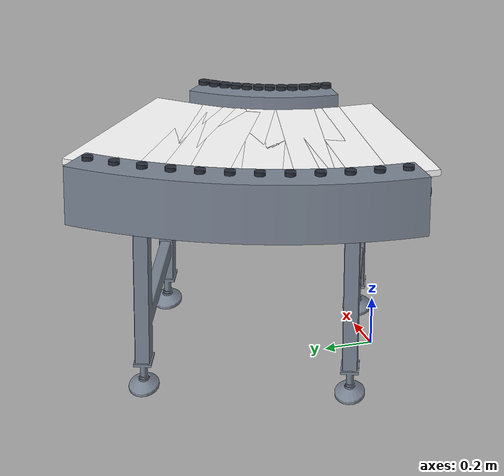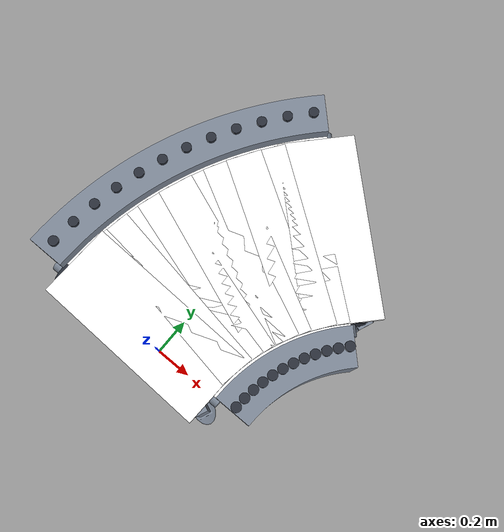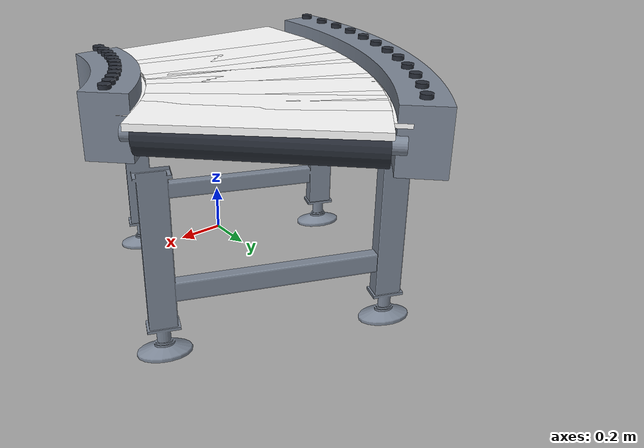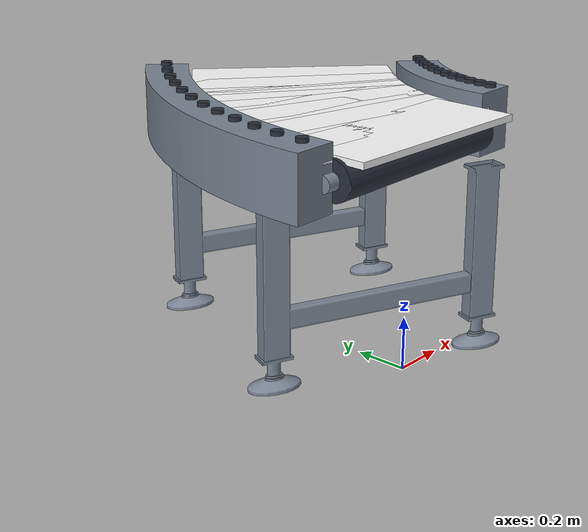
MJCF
<mujoco model="conveyor_curve_right_45">
  <!-- Generated by generate.mjs. Edit the generator rather than this file. -->
  <compiler angle="radian" meshdir="meshes" texturedir="textures"/>
  <option timestep="0.002"/>

  <asset>
    <material name="conveyor_frame_mat" rgba="0.48 0.52 0.58 1" metallic="0.72" roughness="0.28"/>
    <material name="conveyor_hardware_mat" rgba="0.16 0.18 0.22 1" metallic="0.82" roughness="0.24"/>
    <texture name="belt_color" type="2d" file="rubber-color.png"/>
    <texture name="belt_normal" type="2d" file="rubber-normal.png"/>
    <texture name="belt_roughness" type="2d" file="rubber-roughness.png"/>
    <material name="conveyor_belt_mat" rgba="1 1 1 1" metallic="0" roughness="1">
      <layer role="rgb" texture="belt_color"/>
      <layer role="normal" texture="belt_normal"/>
      <layer role="roughness" texture="belt_roughness"/>
    </material>
    <mesh name="conveyor_curve_inner_rail_visual" file="curve-right-45-inner-rail.obj" inertia="shell"/>
    <mesh name="conveyor_curve_outer_rail_visual" file="curve-right-45-outer-rail.obj" inertia="shell"/>
    <mesh name="conveyor_curve_belt_underlay_visual" file="curve-right-45-belt-underlay.obj" inertia="shell"/>
    <mesh name="conveyor_curve_belt_tile" file="belt-curve-tile.obj" inertia="shell"/>
    <mesh name="conveyor_curve_belt_end_tile" file="belt-curve-end-tile.obj" inertia="shell"/>
    <mesh name="conveyor_curve_support_visual"
          file="curve-support-short.obj" inertia="shell"/>
  </asset>

  <worldbody>
    <body name="conveyor_curve_right_45" pos="0 0 0">
      <!-- The incoming connection is centered at the origin and points along local +Y. -->
      <geom name="conveyor_curve_belt_underlay_visual" type="mesh" mesh="conveyor_curve_belt_underlay_visual"
            material="conveyor_belt_mat" group="1" contype="0" conaffinity="0" mass="0"/>
      <geom name="conveyor_curve_inner_rail_visual" type="mesh" mesh="conveyor_curve_inner_rail_visual"
            material="conveyor_frame_mat" group="1" contype="0" conaffinity="0" mass="0"/>
      <geom name="conveyor_curve_outer_rail_visual" type="mesh" mesh="conveyor_curve_outer_rail_visual"
            material="conveyor_frame_mat" group="1" contype="0" conaffinity="0" mass="0"/>
      <!-- Connection frames use local +Y as belt travel for drag-to-attach placement. -->
      <site name="attachment_site" pos="0 0 0.88" xyaxes="1 0 0 0 1 0" size="0.035" group="4"/>
      <site name="attachment_site_outlet" pos="0.366116524 0.883883476 0.88"
            xyaxes="0.707106781 -0.707106781 0 0.707106781 0.707106781 0" size="0.035" group="4"/>

      <!-- Driven roller and end caps make each curve interface read as a real conveyor transition. -->
      <geom name="conveyor_curve_inlet_roller" type="cylinder" fromto="-0.405 0 0.81 0.405 0 0.81" size="0.075"
            material="conveyor_hardware_mat" group="1" contype="0" conaffinity="0" mass="0"/>
      <geom name="conveyor_curve_inlet_roller_caps" type="cylinder" fromto="-0.455 0 0.81 0.455 0 0.81" size="0.031"
            material="conveyor_frame_mat" group="1" contype="0" conaffinity="0" mass="0"/>
      <!-- Driven roller and end caps make each curve interface read as a real conveyor transition. -->
      <geom name="conveyor_curve_outlet_roller" type="cylinder" fromto="0.092463654 1.157536346 0.81 0.665220146 0.584779854 0.81" size="0.075"
            material="conveyor_hardware_mat" group="1" contype="0" conaffinity="0" mass="0"/>
      <geom name="conveyor_curve_outlet_roller_caps" type="cylinder" fromto="0.057108315 1.192891685 0.81 0.700575485 0.549424515 0.81" size="0.031"
            material="conveyor_frame_mat" group="1" contype="0" conaffinity="0" mass="0"/>

      <!-- Reuse the straight conveyor's finished, adjustable-leg support assembly. -->
      <geom name="conveyor_curve_support_visual" type="mesh" mesh="conveyor_curve_support_visual"
            pos="0.11177709 0.471467366 0" quat="0.98078528 0 0 -0.195090322" material="conveyor_frame_mat"
            group="1" contype="0" conaffinity="0" mass="0"/>

      <!-- Fasteners along both guard rails give the curve the same manufactured detail as the straight modules. -->
      <geom name="conveyor_curve_inner_fastener_0" type="cylinder" pos="0.523385647 0.023786891 0.955" size="0.022 0.008"
            material="conveyor_hardware_mat" group="1" contype="0" conaffinity="0" mass="0"/>
      <geom name="conveyor_curve_outer_fastener_0" type="cylinder" pos="-0.486073587 0.056833165 0.955" size="0.022 0.008"
            material="conveyor_hardware_mat" group="1" contype="0" conaffinity="0" mass="0"/>
      <geom name="conveyor_curve_inner_fastener_1" type="cylinder" pos="0.526497121 0.071258814 0.955" size="0.022 0.008"
            material="conveyor_hardware_mat" group="1" contype="0" conaffinity="0" mass="0"/>
      <geom name="conveyor_curve_outer_fastener_1" type="cylinder" pos="-0.478639453 0.170256126 0.955" size="0.022 0.008"
            material="conveyor_hardware_mat" group="1" contype="0" conaffinity="0" mass="0"/>
      <geom name="conveyor_curve_inner_fastener_2" type="cylinder" pos="0.532706746 0.118425596 0.955" size="0.022 0.008"
            material="conveyor_hardware_mat" group="1" contype="0" conaffinity="0" mass="0"/>
      <geom name="conveyor_curve_outer_fastener_2" type="cylinder" pos="-0.46380302 0.282950024 0.955" size="0.022 0.008"
            material="conveyor_hardware_mat" group="1" contype="0" conaffinity="0" mass="0"/>
      <geom name="conveyor_curve_inner_fastener_3" type="cylinder" pos="0.54198793 0.165085261 0.955" size="0.022 0.008"
            material="conveyor_hardware_mat" group="1" contype="0" conaffinity="0" mass="0"/>
      <geom name="conveyor_curve_outer_fastener_3" type="cylinder" pos="-0.441627819 0.394432286 0.955" size="0.022 0.008"
            material="conveyor_hardware_mat" group="1" contype="0" conaffinity="0" mass="0"/>
      <geom name="conveyor_curve_inner_fastener_4" type="cylinder" pos="0.554300931 0.211038005 0.955" size="0.022 0.008"
            material="conveyor_hardware_mat" group="1" contype="0" conaffinity="0" mass="0"/>
      <geom name="conveyor_curve_outer_fastener_4" type="cylinder" pos="-0.412208808 0.504225529 0.955" size="0.022 0.008"
            material="conveyor_hardware_mat" group="1" contype="0" conaffinity="0" mass="0"/>
      <geom name="conveyor_curve_inner_fastener_5" type="cylinder" pos="0.569593022 0.256087053 0.955" size="0.022 0.008"
            material="conveyor_hardware_mat" group="1" contype="0" conaffinity="0" mass="0"/>
      <geom name="conveyor_curve_outer_fastener_5" type="cylinder" pos="-0.375671964 0.611859601 0.955" size="0.022 0.008"
            material="conveyor_hardware_mat" group="1" contype="0" conaffinity="0" mass="0"/>
      <geom name="conveyor_curve_inner_fastener_6" type="cylinder" pos="0.58779872 0.300039496 0.955" size="0.022 0.008"
            material="conveyor_hardware_mat" group="1" contype="0" conaffinity="0" mass="0"/>
      <geom name="conveyor_curve_outer_fastener_6" type="cylinder" pos="-0.332173743 0.716873597 0.955" size="0.022 0.008"
            material="conveyor_hardware_mat" group="1" contype="0" conaffinity="0" mass="0"/>
      <geom name="conveyor_curve_inner_fastener_7" type="cylinder" pos="0.608840066 0.342707125 0.955" size="0.022 0.008"
            material="conveyor_hardware_mat" group="1" contype="0" conaffinity="0" mass="0"/>
      <geom name="conveyor_curve_outer_fastener_7" type="cylinder" pos="-0.281900411 0.818817829 0.955" size="0.022 0.008"
            material="conveyor_hardware_mat" group="1" contype="0" conaffinity="0" mass="0"/>
      <geom name="conveyor_curve_inner_fastener_8" type="cylinder" pos="0.632626957 0.383907228 0.955" size="0.022 0.008"
            material="conveyor_hardware_mat" group="1" contype="0" conaffinity="0" mass="0"/>
      <geom name="conveyor_curve_outer_fastener_8" type="cylinder" pos="-0.225067246 0.917255758 0.955" size="0.022 0.008"
            material="conveyor_hardware_mat" group="1" contype="0" conaffinity="0" mass="0"/>
      <geom name="conveyor_curve_inner_fastener_9" type="cylinder" pos="0.659057534 0.423463383 0.955" size="0.022 0.008"
            material="conveyor_hardware_mat" group="1" contype="0" conaffinity="0" mass="0"/>
      <geom name="conveyor_curve_outer_fastener_9" type="cylinder" pos="-0.161917617 1.011765856 0.955" size="0.022 0.008"
            material="conveyor_hardware_mat" group="1" contype="0" conaffinity="0" mass="0"/>
      <geom name="conveyor_curve_inner_fastener_10" type="cylinder" pos="0.688018618 0.461206201 0.955" size="0.022 0.008"
            material="conveyor_hardware_mat" group="1" contype="0" conaffinity="0" mass="0"/>
      <geom name="conveyor_curve_outer_fastener_10" type="cylinder" pos="-0.09272194 1.101943418 0.955" size="0.022 0.008"
            material="conveyor_hardware_mat" group="1" contype="0" conaffinity="0" mass="0"/>
      <geom name="conveyor_curve_inner_fastener_11" type="cylinder" pos="0.719386192 0.496974065 0.955" size="0.022 0.008"
            material="conveyor_hardware_mat" group="1" contype="0" conaffinity="0" mass="0"/>
      <geom name="conveyor_curve_outer_fastener_11" type="cylinder" pos="-0.017776522 1.18740229 0.955" size="0.022 0.008"
            material="conveyor_hardware_mat" group="1" contype="0" conaffinity="0" mass="0"/>

      <!-- Overlapping tangent boxes approximate stable curved frame and rail collision. -->
      <geom name="conveyor_curve_frame_collision_0" type="box"
            pos="0.01865603 0.040310028 0.35" quat="0.999866138 0 0 -0.016361732"
            size="0.52 0.085235363 0.35" group="3" rgba="0 0 0 0" contype="1" conaffinity="0" density="31.5085"/>
      <geom name="conveyor_curve_inner_rail_collision_0" type="box"
            pos="0.52838297 0.023623296 0.82" quat="0.999866138 0 0 -0.016361732"
            size="0.09 0.085235363 0.12" group="3" rgba="0 0 0 0" contype="1" conaffinity="0" density="31.5085"/>
      <geom name="conveyor_curve_outer_rail_collision_0" type="box"
            pos="-0.491070909 0.05699676 0.82" quat="0.999866138 0 0 -0.016361732"
            size="0.09 0.085235363 0.12" group="3" rgba="0 0 0 0" contype="1" conaffinity="0" density="31.5085"/>
      <geom name="conveyor_curve_frame_collision_1" type="box"
            pos="0.023928834 0.12075747 0.35" quat="0.998795456 0 0 -0.049067674"
            size="0.52 0.085235363 0.35" group="3" rgba="0 0 0 0" contype="1" conaffinity="0" density="31.5085"/>
      <geom name="conveyor_curve_inner_rail_collision_1" type="box"
            pos="0.531473045 0.070768728 0.82" quat="0.998795456 0 0 -0.049067674"
            size="0.09 0.085235363 0.12" group="3" rgba="0 0 0 0" contype="1" conaffinity="0" density="31.5085"/>
      <geom name="conveyor_curve_outer_rail_collision_1" type="box"
            pos="-0.483615377 0.170746211 0.82" quat="0.998795456 0 0 -0.049067674"
            size="0.09 0.085235363 0.12" group="3" rgba="0 0 0 0" contype="1" conaffinity="0" density="31.5085"/>
      <geom name="conveyor_curve_frame_collision_2" type="box"
            pos="0.034451863 0.20068781 0.35" quat="0.996655239 0 0 -0.081721074"
            size="0.52 0.085235363 0.35" group="3" rgba="0 0 0 0" contype="1" conaffinity="0" density="31.5085"/>
      <geom name="conveyor_curve_inner_rail_collision_2" type="box"
            pos="0.537639962 0.117611118 0.82" quat="0.996655239 0 0 -0.081721074"
            size="0.09 0.085235363 0.12" group="3" rgba="0 0 0 0" contype="1" conaffinity="0" density="31.5085"/>
      <geom name="conveyor_curve_outer_rail_collision_2" type="box"
            pos="-0.468736236 0.283764501 0.82" quat="0.996655239 0 0 -0.081721074"
            size="0.09 0.085235363 0.12" group="3" rgba="0 0 0 0" contype="1" conaffinity="0" density="31.5085"/>
      <geom name="conveyor_curve_frame_collision_3" type="box"
            pos="0.050180056 0.279758774 0.35" quat="0.993447779 0 0 -0.114286965"
            size="0.52 0.085235363 0.35" group="3" rgba="0 0 0 0" contype="1" conaffinity="0" density="31.5085"/>
      <geom name="conveyor_curve_inner_rail_collision_3" type="box"
            pos="0.546857315 0.163949879 0.82" quat="0.993447779 0 0 -0.114286965"
            size="0.09 0.085235363 0.12" group="3" rgba="0 0 0 0" contype="1" conaffinity="0" density="31.5085"/>
      <geom name="conveyor_curve_outer_rail_collision_3" type="box"
            pos="-0.446497204 0.395567668 0.82" quat="0.993447779 0 0 -0.114286965"
            size="0.09 0.085235363 0.12" group="3" rgba="0 0 0 0" contype="1" conaffinity="0" density="31.5085"/>
      <geom name="conveyor_curve_frame_collision_4" type="box"
            pos="0.071046061 0.357631767 0.35" quat="0.98917651 0 0 -0.146730474"
            size="0.52 0.085235363 0.35" group="3" rgba="0 0 0 0" contype="1" conaffinity="0" density="31.5085"/>
      <geom name="conveyor_curve_inner_rail_collision_4" type="box"
            pos="0.559085633 0.209586582 0.82" quat="0.98917651 0 0 -0.146730474"
            size="0.09 0.085235363 0.12" group="3" rgba="0 0 0 0" contype="1" conaffinity="0" density="31.5085"/>
      <geom name="conveyor_curve_outer_rail_collision_4" type="box"
            pos="-0.41699351 0.505676953 0.82" quat="0.98917651 0 0 -0.146730474"
            size="0.09 0.085235363 0.12" group="3" rgba="0 0 0 0" contype="1" conaffinity="0" density="31.5085"/>
      <geom name="conveyor_curve_frame_collision_5" type="box"
            pos="0.096960529 0.433973327 0.35" quat="0.983846006 0 0 -0.179016861"
            size="0.52 0.085235363 0.35" group="3" rgba="0 0 0 0" contype="1" conaffinity="0" density="31.5085"/>
      <geom name="conveyor_curve_inner_rail_collision_5" type="box"
            pos="0.574272552 0.254325803 0.82" quat="0.983846006 0 0 -0.179016861"
            size="0.09 0.085235363 0.12" group="3" rgba="0 0 0 0" contype="1" conaffinity="0" density="31.5085"/>
      <geom name="conveyor_curve_outer_rail_collision_5" type="box"
            pos="-0.380351494 0.613620852 0.82" quat="0.983846006 0 0 -0.179016861"
            size="0.09 0.085235363 0.12" group="3" rgba="0 0 0 0" contype="1" conaffinity="0" density="31.5085"/>
      <geom name="conveyor_curve_frame_collision_6" type="box"
            pos="0.127812489 0.508456546 0.35" quat="0.977461975 0 0 -0.211111552"
            size="0.52 0.085235363 0.35" group="3" rgba="0 0 0 0" contype="1" conaffinity="0" density="31.5085"/>
      <geom name="conveyor_curve_inner_rail_collision_6" type="box"
            pos="0.592353039 0.297975961 0.82" quat="0.977461975 0 0 -0.211111552"
            size="0.09 0.085235363 0.12" group="3" rgba="0 0 0 0" contype="1" conaffinity="0" density="31.5085"/>
      <geom name="conveyor_curve_outer_rail_collision_6" type="box"
            pos="-0.336728062 0.718937132 0.82" quat="0.977461975 0 0 -0.211111552"
            size="0.09 0.085235363 0.12" group="3" rgba="0 0 0 0" contype="1" conaffinity="0" density="31.5085"/>
      <geom name="conveyor_curve_frame_collision_7" type="box"
            pos="0.163469827 0.580762477 0.35" quat="0.970031253 0 0 -0.24298018"
            size="0.52 0.085235363 0.35" group="3" rgba="0 0 0 0" contype="1" conaffinity="0" density="31.5085"/>
      <geom name="conveyor_curve_inner_rail_collision_7" type="box"
            pos="0.613249672 0.340350141 0.82" quat="0.970031253 0 0 -0.24298018"
            size="0.09 0.085235363 0.12" group="3" rgba="0 0 0 0" contype="1" conaffinity="0" density="31.5085"/>
      <geom name="conveyor_curve_outer_rail_collision_7" type="box"
            pos="-0.286310017 0.821174813 0.82" quat="0.970031253 0 0 -0.24298018"
            size="0.09 0.085235363 0.12" group="3" rgba="0 0 0 0" contype="1" conaffinity="0" density="31.5085"/>
      <geom name="conveyor_curve_frame_collision_8" type="box"
            pos="0.203779855 0.650581493 0.35" quat="0.961561798 0 0 -0.274588618"
            size="0.52 0.085235363 0.35" group="3" rgba="0 0 0 0" contype="1" conaffinity="0" density="31.5085"/>
      <geom name="conveyor_curve_inner_rail_collision_8" type="box"
            pos="0.636872968 0.381266889 0.82" quat="0.961561798 0 0 -0.274588618"
            size="0.09 0.085235363 0.12" group="3" rgba="0 0 0 0" contype="1" conaffinity="0" density="31.5085"/>
      <geom name="conveyor_curve_outer_rail_collision_8" type="box"
            pos="-0.229313257 0.919896097 0.82" quat="0.961561798 0 0 -0.274588618"
            size="0.09 0.085235363 0.12" group="3" rgba="0 0 0 0" contype="1" conaffinity="0" density="31.5085"/>
      <geom name="conveyor_curve_frame_collision_9" type="box"
            pos="0.248569958 0.717614619 0.35" quat="0.952062678 0 0 -0.30590302"
            size="0.52 0.085235363 0.35" group="3" rgba="0 0 0 0" contype="1" conaffinity="0" density="31.5085"/>
      <geom name="conveyor_curve_inner_rail_collision_9" type="box"
            pos="0.663121767 0.420550994 0.82" quat="0.952062678 0 0 -0.30590302"
            size="0.09 0.085235363 0.12" group="3" rgba="0 0 0 0" contype="1" conaffinity="0" density="31.5085"/>
      <geom name="conveyor_curve_outer_rail_collision_9" type="box"
            pos="-0.165981851 1.014678245 0.82" quat="0.952062678 0 0 -0.30590302"
            size="0.09 0.085235363 0.12" group="3" rgba="0 0 0 0" contype="1" conaffinity="0" density="31.5085"/>
      <geom name="conveyor_curve_frame_collision_10" type="box"
            pos="0.297648339 0.78157481 0.35" quat="0.941544065 0 0 -0.336889853"
            size="0.52 0.085235363 0.35" group="3" rgba="0 0 0 0" contype="1" conaffinity="0" density="31.5085"/>
      <geom name="conveyor_curve_inner_rail_collision_10" type="box"
            pos="0.69188367 0.458034235 0.82" quat="0.941544065 0 0 -0.336889853"
            size="0.09 0.085235363 0.12" group="3" rgba="0 0 0 0" contype="1" conaffinity="0" density="31.5085"/>
      <geom name="conveyor_curve_outer_rail_collision_10" type="box"
            pos="-0.096586993 1.105115385 0.82" quat="0.941544065 0 0 -0.336889853"
            size="0.09 0.085235363 0.12" group="3" rgba="0 0 0 0" contype="1" conaffinity="0" density="31.5085"/>
      <geom name="conveyor_curve_frame_collision_11" type="box"
            pos="0.350804835 0.842188177 0.35" quat="0.930017224 0 0 -0.367515937"
            size="0.52 0.085235363 0.35" group="3" rgba="0 0 0 0" contype="1" conaffinity="0" density="31.5085"/>
      <geom name="conveyor_curve_inner_rail_collision_11" type="box"
            pos="0.723035512 0.493556103 0.82" quat="0.930017224 0 0 -0.367515937"
            size="0.09 0.085235363 0.12" group="3" rgba="0 0 0 0" contype="1" conaffinity="0" density="31.5085"/>
      <geom name="conveyor_curve_outer_rail_collision_11" type="box"
            pos="-0.021425842 1.190820251 0.82" quat="0.930017224 0 0 -0.367515937"
            size="0.09 0.085235363 0.12" group="3" rgba="0 0 0 0" contype="1" conaffinity="0" density="31.5085"/>

      <!-- Tangent-aligned moving contact tiles steer objects continuously through the turn. -->
      <body name="conveyor_belt_segment_0" pos="0.01865603 0.040310028 0.88" quat="0.999866138 0 0 -0.016361732">
        <joint name="conveyor_belt_segment_0_slide" type="slide" axis="0 1 0"
               range="-0.05 0.05" limited="false" damping="0"/>
        <geom name="conveyor_belt_segment_0_contact" type="box"
              size="0.39 0.169211827 0.0125" group="3" contype="1" conaffinity="2"
              rgba="0 0 0 0" condim="6" friction="1.8 0.08 0.02"
              solimp="0.9 0.98 0.0001" solref="0.002 1" mass="0.00063017"/>
        <!-- The visible tread shares this moving MuJoCo body with its contact tile. -->
        <geom name="conveyor_belt_segment_0_visual" type="mesh" mesh="conveyor_curve_belt_end_tile"
              material="conveyor_belt_mat" group="1" contype="0" conaffinity="0" mass="0"/>
      </body>
      <body name="conveyor_belt_segment_1" pos="0.023928834 0.12075747 0.88" quat="0.998795456 0 0 -0.049067674">
        <joint name="conveyor_belt_segment_1_slide" type="slide" axis="0 1 0"
               range="-0.05 0.05" limited="false" damping="0"/>
        <geom name="conveyor_belt_segment_1_contact" type="box"
              size="0.39 0.079211827 0.0125" group="3" contype="1" conaffinity="2"
              rgba="0 0 0 0" condim="6" friction="1.8 0.08 0.02"
              solimp="0.9 0.98 0.0001" solref="0.002 1" mass="0.00063017"/>
        <!-- The visible tread shares this moving MuJoCo body with its contact tile. -->
        <geom name="conveyor_belt_segment_1_visual" type="mesh" mesh="conveyor_curve_belt_tile"
              material="conveyor_belt_mat" group="1" contype="0" conaffinity="0" mass="0"/>
      </body>
      <body name="conveyor_belt_segment_2" pos="0.034451863 0.20068781 0.88" quat="0.996655239 0 0 -0.081721074">
        <joint name="conveyor_belt_segment_2_slide" type="slide" axis="0 1 0"
               range="-0.05 0.05" limited="false" damping="0"/>
        <geom name="conveyor_belt_segment_2_contact" type="box"
              size="0.39 0.079211827 0.0125" group="3" contype="1" conaffinity="2"
              rgba="0 0 0 0" condim="6" friction="1.8 0.08 0.02"
              solimp="0.9 0.98 0.0001" solref="0.002 1" mass="0.00063017"/>
        <!-- The visible tread shares this moving MuJoCo body with its contact tile. -->
        <geom name="conveyor_belt_segment_2_visual" type="mesh" mesh="conveyor_curve_belt_tile"
              material="conveyor_belt_mat" group="1" contype="0" conaffinity="0" mass="0"/>
      </body>
      <body name="conveyor_belt_segment_3" pos="0.050180056 0.279758774 0.88" quat="0.993447779 0 0 -0.114286965">
        <joint name="conveyor_belt_segment_3_slide" type="slide" axis="0 1 0"
               range="-0.05 0.05" limited="false" damping="0"/>
        <geom name="conveyor_belt_segment_3_contact" type="box"
              size="0.39 0.079211827 0.0125" group="3" contype="1" conaffinity="2"
              rgba="0 0 0 0" condim="6" friction="1.8 0.08 0.02"
              solimp="0.9 0.98 0.0001" solref="0.002 1" mass="0.00063017"/>
        <!-- The visible tread shares this moving MuJoCo body with its contact tile. -->
        <geom name="conveyor_belt_segment_3_visual" type="mesh" mesh="conveyor_curve_belt_tile"
              material="conveyor_belt_mat" group="1" contype="0" conaffinity="0" mass="0"/>
      </body>
      <body name="conveyor_belt_segment_4" pos="0.071046061 0.357631767 0.88" quat="0.98917651 0 0 -0.146730474">
        <joint name="conveyor_belt_segment_4_slide" type="slide" axis="0 1 0"
               range="-0.05 0.05" limited="false" damping="0"/>
        <geom name="conveyor_belt_segment_4_contact" type="box"
              size="0.39 0.079211827 0.0125" group="3" contype="1" conaffinity="2"
              rgba="0 0 0 0" condim="6" friction="1.8 0.08 0.02"
              solimp="0.9 0.98 0.0001" solref="0.002 1" mass="0.00063017"/>
        <!-- The visible tread shares this moving MuJoCo body with its contact tile. -->
        <geom name="conveyor_belt_segment_4_visual" type="mesh" mesh="conveyor_curve_belt_tile"
              material="conveyor_belt_mat" group="1" contype="0" conaffinity="0" mass="0"/>
      </body>
      <body name="conveyor_belt_segment_5" pos="0.096960529 0.433973327 0.88" quat="0.983846006 0 0 -0.179016861">
        <joint name="conveyor_belt_segment_5_slide" type="slide" axis="0 1 0"
               range="-0.05 0.05" limited="false" damping="0"/>
        <geom name="conveyor_belt_segment_5_contact" type="box"
              size="0.39 0.079211827 0.0125" group="3" contype="1" conaffinity="2"
              rgba="0 0 0 0" condim="6" friction="1.8 0.08 0.02"
              solimp="0.9 0.98 0.0001" solref="0.002 1" mass="0.00063017"/>
        <!-- The visible tread shares this moving MuJoCo body with its contact tile. -->
        <geom name="conveyor_belt_segment_5_visual" type="mesh" mesh="conveyor_curve_belt_tile"
              material="conveyor_belt_mat" group="1" contype="0" conaffinity="0" mass="0"/>
      </body>
      <body name="conveyor_belt_segment_6" pos="0.127812489 0.508456546 0.88" quat="0.977461975 0 0 -0.211111552">
        <joint name="conveyor_belt_segment_6_slide" type="slide" axis="0 1 0"
               range="-0.05 0.05" limited="false" damping="0"/>
        <geom name="conveyor_belt_segment_6_contact" type="box"
              size="0.39 0.079211827 0.0125" group="3" contype="1" conaffinity="2"
              rgba="0 0 0 0" condim="6" friction="1.8 0.08 0.02"
              solimp="0.9 0.98 0.0001" solref="0.002 1" mass="0.00063017"/>
        <!-- The visible tread shares this moving MuJoCo body with its contact tile. -->
        <geom name="conveyor_belt_segment_6_visual" type="mesh" mesh="conveyor_curve_belt_tile"
              material="conveyor_belt_mat" group="1" contype="0" conaffinity="0" mass="0"/>
      </body>
      <body name="conveyor_belt_segment_7" pos="0.163469827 0.580762477 0.88" quat="0.970031253 0 0 -0.24298018">
        <joint name="conveyor_belt_segment_7_slide" type="slide" axis="0 1 0"
               range="-0.05 0.05" limited="false" damping="0"/>
        <geom name="conveyor_belt_segment_7_contact" type="box"
              size="0.39 0.079211827 0.0125" group="3" contype="1" conaffinity="2"
              rgba="0 0 0 0" condim="6" friction="1.8 0.08 0.02"
              solimp="0.9 0.98 0.0001" solref="0.002 1" mass="0.00063017"/>
        <!-- The visible tread shares this moving MuJoCo body with its contact tile. -->
        <geom name="conveyor_belt_segment_7_visual" type="mesh" mesh="conveyor_curve_belt_tile"
              material="conveyor_belt_mat" group="1" contype="0" conaffinity="0" mass="0"/>
      </body>
      <body name="conveyor_belt_segment_8" pos="0.203779855 0.650581493 0.88" quat="0.961561798 0 0 -0.274588618">
        <joint name="conveyor_belt_segment_8_slide" type="slide" axis="0 1 0"
               range="-0.05 0.05" limited="false" damping="0"/>
        <geom name="conveyor_belt_segment_8_contact" type="box"
              size="0.39 0.079211827 0.0125" group="3" contype="1" conaffinity="2"
              rgba="0 0 0 0" condim="6" friction="1.8 0.08 0.02"
              solimp="0.9 0.98 0.0001" solref="0.002 1" mass="0.00063017"/>
        <!-- The visible tread shares this moving MuJoCo body with its contact tile. -->
        <geom name="conveyor_belt_segment_8_visual" type="mesh" mesh="conveyor_curve_belt_tile"
              material="conveyor_belt_mat" group="1" contype="0" conaffinity="0" mass="0"/>
      </body>
      <body name="conveyor_belt_segment_9" pos="0.248569958 0.717614619 0.88" quat="0.952062678 0 0 -0.30590302">
        <joint name="conveyor_belt_segment_9_slide" type="slide" axis="0 1 0"
               range="-0.05 0.05" limited="false" damping="0"/>
        <geom name="conveyor_belt_segment_9_contact" type="box"
              size="0.39 0.079211827 0.0125" group="3" contype="1" conaffinity="2"
              rgba="0 0 0 0" condim="6" friction="1.8 0.08 0.02"
              solimp="0.9 0.98 0.0001" solref="0.002 1" mass="0.00063017"/>
        <!-- The visible tread shares this moving MuJoCo body with its contact tile. -->
        <geom name="conveyor_belt_segment_9_visual" type="mesh" mesh="conveyor_curve_belt_tile"
              material="conveyor_belt_mat" group="1" contype="0" conaffinity="0" mass="0"/>
      </body>
      <body name="conveyor_belt_segment_10" pos="0.297648339 0.78157481 0.88" quat="0.941544065 0 0 -0.336889853">
        <joint name="conveyor_belt_segment_10_slide" type="slide" axis="0 1 0"
               range="-0.05 0.05" limited="false" damping="0"/>
        <geom name="conveyor_belt_segment_10_contact" type="box"
              size="0.39 0.079211827 0.0125" group="3" contype="1" conaffinity="2"
              rgba="0 0 0 0" condim="6" friction="1.8 0.08 0.02"
              solimp="0.9 0.98 0.0001" solref="0.002 1" mass="0.00063017"/>
        <!-- The visible tread shares this moving MuJoCo body with its contact tile. -->
        <geom name="conveyor_belt_segment_10_visual" type="mesh" mesh="conveyor_curve_belt_tile"
              material="conveyor_belt_mat" group="1" contype="0" conaffinity="0" mass="0"/>
      </body>
      <body name="conveyor_belt_segment_11" pos="0.350804835 0.842188177 0.88" quat="0.930017224 0 0 -0.367515937">
        <joint name="conveyor_belt_segment_11_slide" type="slide" axis="0 1 0"
               range="-0.05 0.05" limited="false" damping="0"/>
        <geom name="conveyor_belt_segment_11_contact" type="box"
              size="0.39 0.169211827 0.0125" group="3" contype="1" conaffinity="2"
              rgba="0 0 0 0" condim="6" friction="1.8 0.08 0.02"
              solimp="0.9 0.98 0.0001" solref="0.002 1" mass="0.00063017"/>
        <!-- The visible tread shares this moving MuJoCo body with its contact tile. -->
        <geom name="conveyor_belt_segment_11_visual" type="mesh" mesh="conveyor_curve_belt_end_tile"
              material="conveyor_belt_mat" group="1" contype="0" conaffinity="0" mass="0"/>
      </body>
    </body>
  </worldbody>

  <equality>
    <joint name="belt_eq_0_1" joint1="conveyor_belt_segment_0_slide" joint2="conveyor_belt_segment_1_slide" polycoef="0 1 0 0 0"/>
    <joint name="belt_eq_1_2" joint1="conveyor_belt_segment_1_slide" joint2="conveyor_belt_segment_2_slide" polycoef="0 1 0 0 0"/>
    <joint name="belt_eq_2_3" joint1="conveyor_belt_segment_2_slide" joint2="conveyor_belt_segment_3_slide" polycoef="0 1 0 0 0"/>
    <joint name="belt_eq_3_4" joint1="conveyor_belt_segment_3_slide" joint2="conveyor_belt_segment_4_slide" polycoef="0 1 0 0 0"/>
    <joint name="belt_eq_4_5" joint1="conveyor_belt_segment_4_slide" joint2="conveyor_belt_segment_5_slide" polycoef="0 1 0 0 0"/>
    <joint name="belt_eq_5_6" joint1="conveyor_belt_segment_5_slide" joint2="conveyor_belt_segment_6_slide" polycoef="0 1 0 0 0"/>
    <joint name="belt_eq_6_7" joint1="conveyor_belt_segment_6_slide" joint2="conveyor_belt_segment_7_slide" polycoef="0 1 0 0 0"/>
    <joint name="belt_eq_7_8" joint1="conveyor_belt_segment_7_slide" joint2="conveyor_belt_segment_8_slide" polycoef="0 1 0 0 0"/>
    <joint name="belt_eq_8_9" joint1="conveyor_belt_segment_8_slide" joint2="conveyor_belt_segment_9_slide" polycoef="0 1 0 0 0"/>
    <joint name="belt_eq_9_10" joint1="conveyor_belt_segment_9_slide" joint2="conveyor_belt_segment_10_slide" polycoef="0 1 0 0 0"/>
    <joint name="belt_eq_10_11" joint1="conveyor_belt_segment_10_slide" joint2="conveyor_belt_segment_11_slide" polycoef="0 1 0 0 0"/>
  </equality>

  <actuator>
    <velocity name="conveyor_speed" joint="conveyor_belt_segment_0_slide" ctrlrange="-1.5 1.5" kv="20"/>
  </actuator>
</mujoco>
